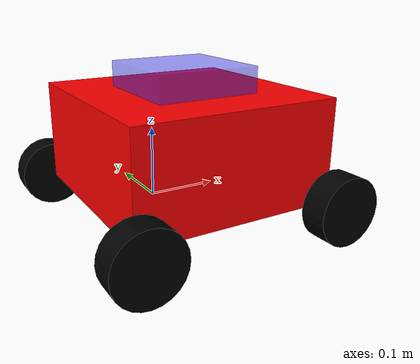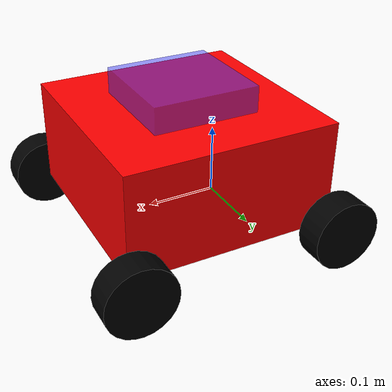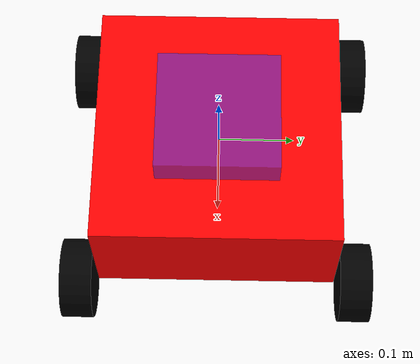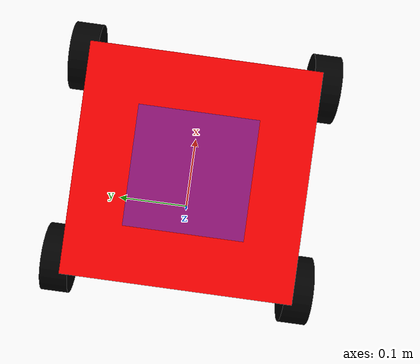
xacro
<?xml version="1.0"?>
<robot xmlns:xacro="http://www.ros.org/wiki/xacro">

    <xacro:include filename="inertial_macros.xacro"/>

    <material name="white">
        <color rgba="1 1 1 1"/>
    </material>

    <material name="orange">
        <color rgba="1 0.3 0.1 1"/>
    </material>

    <material name="blue">
        <color rgba="0.2 0.2 1 0.5"/>
    </material>

    <material name="black">
        <color rgba="0 0 0 1"/>
    </material>

    <material name="red">
        <color rgba="1 0 0 1"/>
    </material>

    <link name="base_link">
    </link>

    <!-- CHASSIS -->
    <joint name="chassis_joint" type="fixed">
        <parent link="base_link"/>
        <child link="chassis"/>
        <origin xyz="-0.1 0 0"/>
    </joint>

    <link name="chassis">
        <visual>
            <origin xyz="0.15 0 0.075"/>
            <geometry>
                <box size="0.3 0.3 0.15"/>
            </geometry>
            <material name="red"/>
        </visual>
        <collision>
            <origin xyz="0.15 0 0.075"/>
            <geometry>
                <box size="0.3 0.3 0.15"/>
            </geometry>
        </collision>
        <xacro:inertial_box mass="0.5" x="0.3" y="0.3" z="0.15">
            <origin xyz="0.15 0 0.075" rpy="0 0 0"/>
        </xacro:inertial_box>
    </link>

    <!-- REAR LEFT-->
    <joint name="left_wheel_joint" type="continuous">
        <parent link="base_link"/>
        <child link="left_wheel"/>
        <origin xyz="-0.1 0.175 0" rpy="-${pi/2} 0 0"/>
        <axis xyz="0 0 1"/>
    </joint>

    <link name="left_wheel">
        <visual>
            <geometry>
                <cylinder radius="0.05" length="0.04"/>
            </geometry>
            <material name="black"/>
        </visual>
        <collision>
            <geometry>
                <cylinder radius="0.05" length="0.04"/>
            </geometry>
        </collision>
        <xacro:inertial_cylinder mass="0.1" length="0.04" radius="0.05">
            <origin xyz="0 0 0" rpy="0 0 0"/>
        </xacro:inertial_cylinder>
    </link>

    <!-- REAR RIGHT -->
    <joint name="right_wheel_joint" type="continuous">
        <parent link="base_link"/>
        <child link="right_wheel"/>
        <origin xyz="-0.1 -0.175 0" rpy="${pi/2} 0 0"/>
        <axis xyz="0 0 -1"/>
    </joint>

    <link name="right_wheel">
        <visual>
            <geometry>
                <cylinder radius="0.05" length="0.04"/>
            </geometry>
            <material name="black"/>
        </visual>
        <collision>
            <geometry>
                <cylinder radius="0.05" length="0.04"/>
            </geometry>
        </collision>
        <xacro:inertial_cylinder mass="0.1" length="0.04" radius="0.05">
            <origin xyz="0 0 0" rpy="0 0 0"/>
        </xacro:inertial_cylinder>
    </link>

    <!-- FRONT LEFT -->
    <joint name="front_left_wheel_joint" type="continuous">
        <parent link="base_link"/>
        <child link="front_left_wheel"/>
        <origin xyz="0.20 0.175 0" rpy="-${pi/2} 0 0"/>
        <axis xyz="0 0 1"/>
    </joint>

    <link name="front_left_wheel">
        <visual>
            <geometry>
                <cylinder radius="0.05" length="0.04"/>
            </geometry>
            <material name="black"/>
        </visual>
        <collision>
            <geometry>
                <cylinder radius="0.05" length="0.04"/>
            </geometry>
        </collision>
        <xacro:inertial_cylinder mass="0.1" length="0.04" radius="0.05">
            <origin xyz="0 0 0" rpy="0 0 0"/>
        </xacro:inertial_cylinder>
    </link>

    <!-- FRONT RIGHT-->
    <joint name="front_right_wheel_joint" type="continuous">
        <parent link="base_link"/>
        <child link="front_right_wheel"/>
        <origin xyz="0.20 -0.175 0" rpy="${pi/2} 0 0"/>
        <axis xyz="0 0 -1"/>
    </joint>

    <link name="front_right_wheel">
        <visual>
            <geometry>
                <cylinder radius="0.05" length="0.04"/>
            </geometry>
            <material name="black"/>
        </visual>
        <collision>
            <geometry>
                <cylinder radius="0.05" length="0.04"/>
            </geometry>
        </collision>
        <xacro:inertial_cylinder mass="0.1" length="0.04" radius="0.05">
            <origin xyz="0 0 0" rpy="0 0 0"/>
        </xacro:inertial_cylinder>
    </link>

    <!-- SLIDER-->
    <joint name="slider_joint" type="prismatic">
        <parent link="chassis"/>
        <child link="slider"/>
        <axis xyz="1 0 0"/>
        <limit lower="-0.07" upper="0.07" effort="100" velocity="100"/>
    </joint>

    <link name="slider">
        <visual>
            <origin xyz="0.15 0 0.15"/>
            <geometry>
                <box size="0.15 0.15 0.075"/>
            </geometry>
            <material name="blue"/>
        </visual>
        <collision>
            <origin xyz="0.15 0 0.15"/>
            <geometry>
                <box size="0.15 0.15 0.075"/>
            </geometry>
        </collision>
        <xacro:inertial_box mass="0.5" x="0.15" y="0.15" z="0.075">
            <origin xyz="0.15 0 0.15" rpy="0 0 0"/>
        </xacro:inertial_box>
    </link>

</robot>
